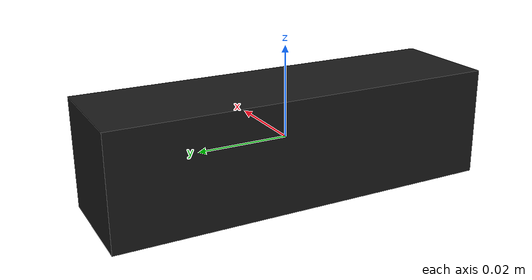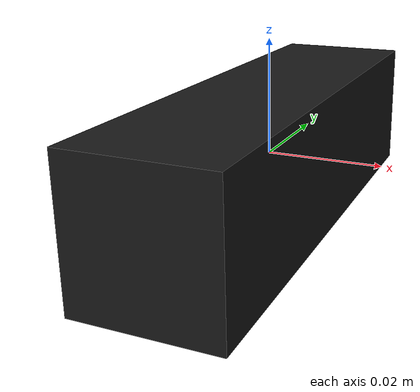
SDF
<?xml version="1.0"?>
<sdf version="1.9">
  <model name="camera_imx219_stereo">
    <pose>0 0 0 0 0 0</pose> <!-- world pose overridden by joint -->
    <link name="link">
      <pose>0 0 0 0 0 0</pose>

      <inertial>
        <mass>0.05</mass>
        <inertia>
          <ixx>1.0e-5</ixx>
          <iyy>1.0e-5</iyy>
          <izz>1.0e-5</izz>
        </inertia>
      </inertial>
      <!-- Visual geometry representing the stereo camera board -->
      <visual name="visual">
        <geometry>
          <box><size>0.024 0.085 0.024</size></box>
        </geometry>
        <material>
          <diffuse>0.1 0.1 0.1 1</diffuse>
        </material>
      </visual>

      <collision name="collision">
        <geometry>
          <box><size>0.024 0.085 0.024</size></box>
        </geometry>
      </collision>
    </link>

    <link name="left_camera_link">
      <pose>0.012 0.03 0.0 0 0 0</pose>

      <inertial>
        <mass>0.001</mass>
        <inertia>
          <ixx>1.0e-6</ixx>
          <ixy>0</ixy>
          <ixz>0</ixz>
          <iyy>1.0e-6</iyy>
          <iyz>0</iyz>
          <izz>1.0e-6</izz>
        </inertia>
      </inertial>

      <!-- LEFT CAMERA -->
      <sensor name="left_camera" type="camera">
        <pose>0 0 0.0 0 0 0</pose>
        <always_on>1</always_on>
        <update_rate>30</update_rate>
        <topic>smallboat/left/camera/image_raw</topic>
        <camera>
          <optical_frame_id>smallboat/left/left_camera_optical_frame</optical_frame_id>
          <horizontal_fov>1.293</horizontal_fov>
          <image>
            <width>1640</width>
            <height>1232</height>
            <format>R8G8B8</format>
          </image>
          <clip>
            <near>0.1</near>
            <far>100</far>
          </clip>

          <!-- Full resolution intrinsics from calibration matrix -->
          <lens>
            <intrinsics>
              <fx>1086.70444</fx>
              <fy>1086.24712</fy>
              <cx>798.84070</cx>
              <cy>570.24652</cy>
              <s>0.0</s>
            </intrinsics>
          </lens>

          <distortion>
            <k1>0.06291655</k1>
            <k2>-0.08153074</k2>
            <k3>0.0</k3>
            <p1>-0.01109246</p1>
            <p2>0.00233376</p2>
            <center>0.5 0.5</center>
          </distortion>
        </camera>
      </sensor>
    </link>
        <joint name="left_camera_joint" type="fixed">
      <parent>link</parent>
      <child>left_camera_link</child>
    </joint>

    <link name="left_camera_optical_frame">
      <!-- Translation is 0 relative to parent link; rotate -90deg Roll, -90deg Yaw -->
      <pose relative_to="left_camera_link">0 0 0 -1.5707963 0 -1.5707963</pose>
      <inertial>
        <mass>0.001</mass>
        <inertia>
          <ixx>1.0e-6</ixx>
          <ixy>0</ixy>
          <ixz>0</ixz>
          <iyy>1.0e-6</iyy>
          <iyz>0</iyz>
          <izz>1.0e-6</izz>
        </inertia>
      </inertial>
    </link>

    <joint name="left_camera_optical_joint" type="fixed">
      <parent>left_camera_link</parent>
      <child>left_camera_optical_frame</child>
    </joint>
      <!-- RIGHT CAMERA -->
  </model>
</sdf>
